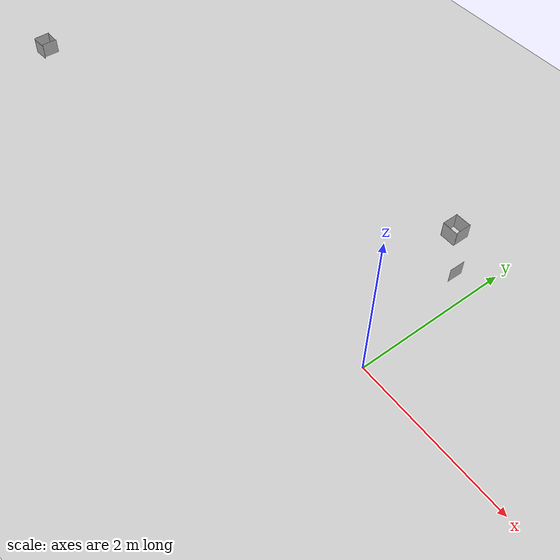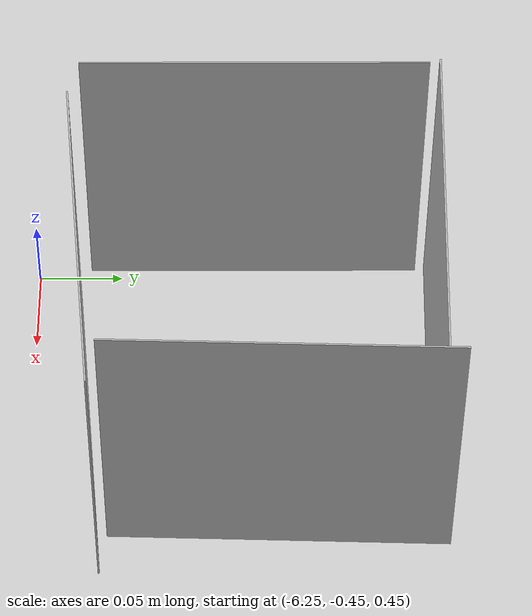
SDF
<sdf version="1.6">
 <world name="default">
  <light name="sun" type="directional">
   <pose>0 0 10 0 -0 0</pose>
   <diffuse>0.8 0.8 0.8 1</diffuse>
   <specular>0.1 0.1 0.1 1</specular>
   <attenuation>
    <range>1000</range>
    <constant>0.9</constant>
    <linear>0.01</linear>
    <quadratic>0.001</quadratic>
   </attenuation>
   <direction>-0.5 0.5 -1</direction>
  </light>
  <model name="ground_plane">
   <static>1</static>
   <link name="link">
    <collision name="collision">
     <geometry><plane><normal>0 0 1</normal><size>100 100</size></plane></geometry>
     <surface><friction><ode><mu>100</mu><mu2>50</mu2></ode></friction></surface>
    </collision>
    <visual name="visual">
     <cast_shadows>0</cast_shadows>
     <geometry><plane><normal>0 0 1</normal><size>100 100</size></plane></geometry>
     <material>
      <script><uri>file://media/materials/scripts/gazebo.material</uri><name>Gazebo/Grey</name></script>
     </material>
    </visual>
   </link>
  </model>
  <physics name="default_physics" default="0" type="ode">
   <real_time_update_rate>1000</real_time_update_rate>
   <max_step_size>0.001</max_step_size>
   <real_time_factor>1</real_time_factor>
   <ode>
    <solver>
     <type>quick</type>
     <iters>150</iters>
     <precon_iters>0</precon_iters>
     <sor>1.4</sor>
     <use_dynamic_moi_rescaling>1</use_dynamic_moi_rescaling>
    </solver>
    <constraints>
     <cfm>1e-05</cfm>
     <erp>0.2</erp>
     <contact_max_correcting_vel>2000</contact_max_correcting_vel>
     <contact_surface_layer>0.01</contact_surface_layer>
    </constraints>
   </ode>
  </physics>
  <scene><ambient>0.4 0.4 0.4 1</ambient><background>0.7 0.7 0.7 1</background><shadows>1</shadows></scene>
  <gravity>0 0 -9.8</gravity>
  <magnetic_field>6e-06 2.3e-05 -4.2e-05</magnetic_field>
  <atmosphere type="adiabatic"/>
  <spherical_coordinates>
   <surface_model>EARTH_WGS84</surface_model>
   <latitude_deg>0</latitude_deg>
   <longitude_deg>0</longitude_deg>
   <elevation>0</elevation>
   <heading_deg>0</heading_deg>
  </spherical_coordinates>
  <model name="symbol_power">
   <pose>-0.581996 1.70243 0.56546 0 -0 1.5708</pose>
   <static>1</static>
   <link name="body">
    <collision name="collision"><geometry><box><size>0.2 0.01 0.2</size></box></geometry></collision>
    <visual name="visual">
     <geometry><box><size>0.2 0.001 0.2</size></box></geometry>
     <material>
      <script>
       <uri>model://symbol_power/materials/scripts</uri>
       <uri>model://symbol_power/materials/textures</uri>
       <name>power</name>
      </script>
     </material>
    </visual>
   </link>
  </model>
  <model name="symbol_n3">
   <pose>-0.131614 1.39649 0.418601 0 0 -1.5708</pose>
   <static>1</static>
   <link name="body">
    <collision name="collision"><geometry><box><size>0.2 0.01 0.2</size></box></geometry></collision>
    <visual name="visual">
     <geometry><box><size>0.2 0.001 0.2</size></box></geometry>
     <material>
      <script>
       <uri>model://symbol_n3/materials/scripts</uri>
       <uri>model://symbol_n3/materials/textures</uri>
       <name>n3</name>
      </script>
     </material>
    </visual>
   </link>
  </model>
  <audio><device>default</device></audio>
  <model name="symbol_power_0">
   <pose>-0.479395 1.60195 0.564912 0 -0 0</pose>
   <static>1</static>
   <link name="body">
    <collision name="collision"><geometry><box><size>0.2 0.01 0.2</size></box></geometry></collision>
    <visual name="visual">
     <geometry><box><size>0.2 0.001 0.2</size></box></geometry>
     <material>
      <script>
       <uri>model://symbol_power/materials/scripts</uri>
       <uri>model://symbol_power/materials/textures</uri>
       <name>power</name>
      </script>
     </material>
    </visual>
   </link>
  </model>
  <model name="symbol_power_1">
   <pose>-0.487703 1.80583 0.5668 0 -0 0</pose>
   <static>1</static>
   <link name="body">
    <collision name="collision"><geometry><box><size>0.2 0.01 0.2</size></box></geometry></collision>
    <visual name="visual">
     <geometry><box><size>0.2 0.001 0.2</size></box></geometry>
     <material>
      <script>
       <uri>model://symbol_power/materials/scripts</uri>
       <uri>model://symbol_power/materials/textures</uri>
       <name>power</name>
      </script>
     </material>
    </visual>
   </link>
  </model>
  <model name="symbol_power_2">
   <pose>-0.381556 1.71147 0.573723 0 0 -1.56708</pose>
   <static>1</static>
   <link name="body">
    <collision name="collision"><geometry><box><size>0.2 0.01 0.2</size></box></geometry></collision>
    <visual name="visual">
     <geometry><box><size>0.2 0.001 0.2</size></box></geometry>
     <material>
      <script>
       <uri>model://symbol_power/materials/scripts</uri>
       <uri>model://symbol_power/materials/textures</uri>
       <name>power</name>
      </script>
     </material>
    </visual>
   </link>
  </model>
  <model name="symbol_n1">
   <pose>-6.0695 -0.303372 0.541979 0 -0 -1.58589</pose>
   <static>1</static>
   <link name="body">
    <collision name="collision"><geometry><box><size>0.2 0.01 0.2</size></box></geometry></collision>
    <visual name="visual">
     <geometry><box><size>0.2 0.001 0.2</size></box></geometry>
     <material>
      <script>
       <uri>model://symbol_n1/materials/scripts</uri>
       <uri>model://symbol_n1/materials/textures</uri>
       <name>n1</name>
      </script>
     </material>
    </visual>
   </link>
  </model>
  <model name="symbol_n1_0">
   <pose>-6.15503 -0.417263 0.525117 0 0 -3.05106</pose>
   <static>1</static>
   <link name="body">
    <collision name="collision"><geometry><box><size>0.2 0.01 0.2</size></box></geometry></collision>
    <visual name="visual">
     <geometry><box><size>0.2 0.001 0.2</size></box></geometry>
     <material>
      <script>
       <uri>model://symbol_n1/materials/scripts</uri>
       <uri>model://symbol_n1/materials/textures</uri>
       <name>n1</name>
      </script>
     </material>
    </visual>
   </link>
  </model>
  <model name="symbol_n1_1">
   <pose>-6.17132 -0.213937 0.536179 0 -0 0</pose>
   <static>1</static>
   <link name="body">
    <collision name="collision"><geometry><box><size>0.2 0.01 0.2</size></box></geometry></collision>
    <visual name="visual">
     <geometry><box><size>0.2 0.001 0.2</size></box></geometry>
     <material>
      <script>
       <uri>model://symbol_n1/materials/scripts</uri>
       <uri>model://symbol_n1/materials/textures</uri>
       <name>n1</name>
      </script>
     </material>
    </visual>
   </link>
  </model>
  <model name="symbol_n1_2">
   <pose>-6.26884 -0.319824 0.534764 0 -0 1.58343</pose>
   <static>1</static>
   <link name="body">
    <collision name="collision"><geometry><box><size>0.2 0.01 0.2</size></box></geometry></collision>
    <visual name="visual">
     <geometry><box><size>0.2 0.001 0.2</size></box></geometry>
     <material>
      <script>
       <uri>model://symbol_n1/materials/scripts</uri>
       <uri>model://symbol_n1/materials/textures</uri>
       <name>n1</name>
      </script>
     </material>
    </visual>
   </link>
  </model>
 </world>
</sdf>
